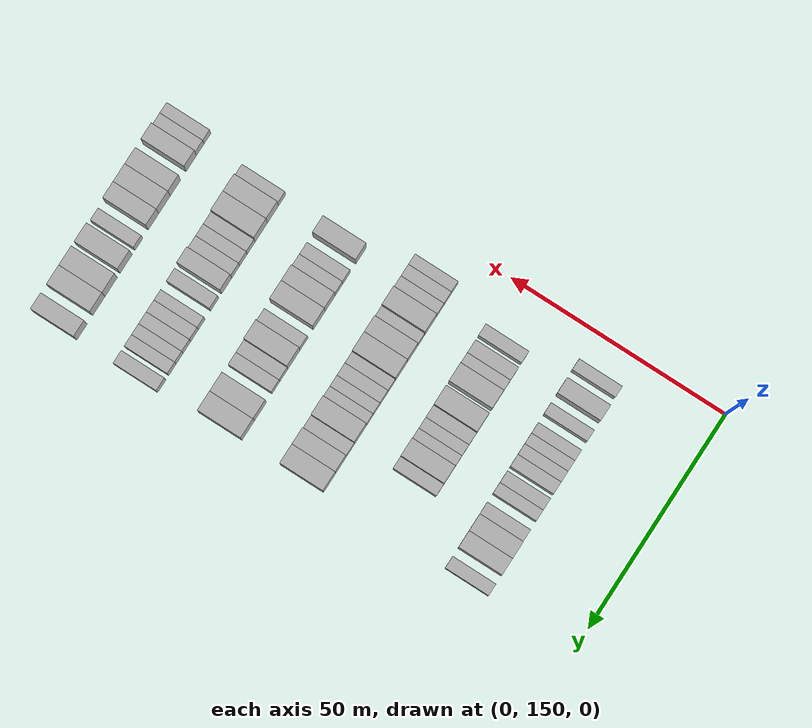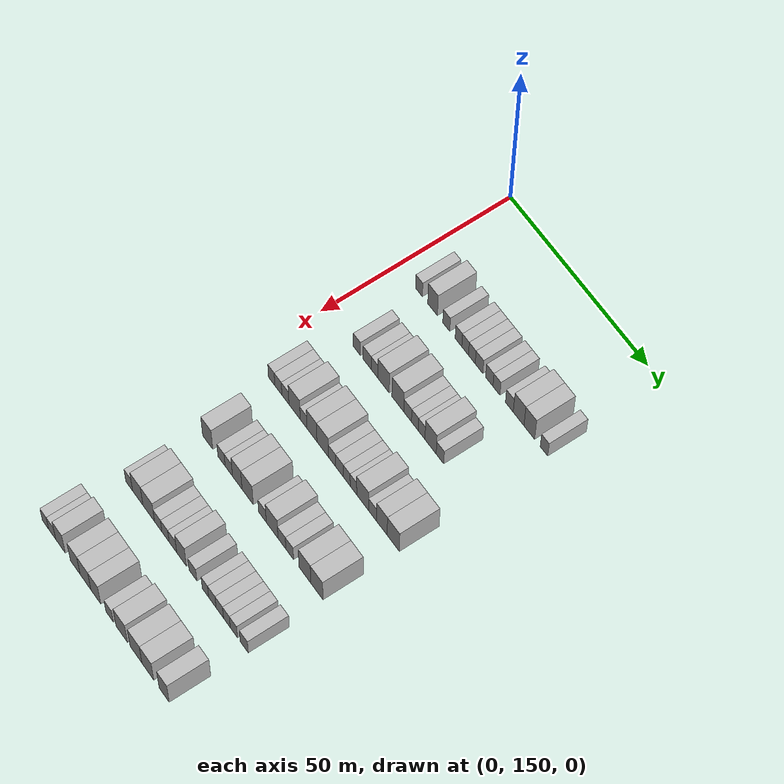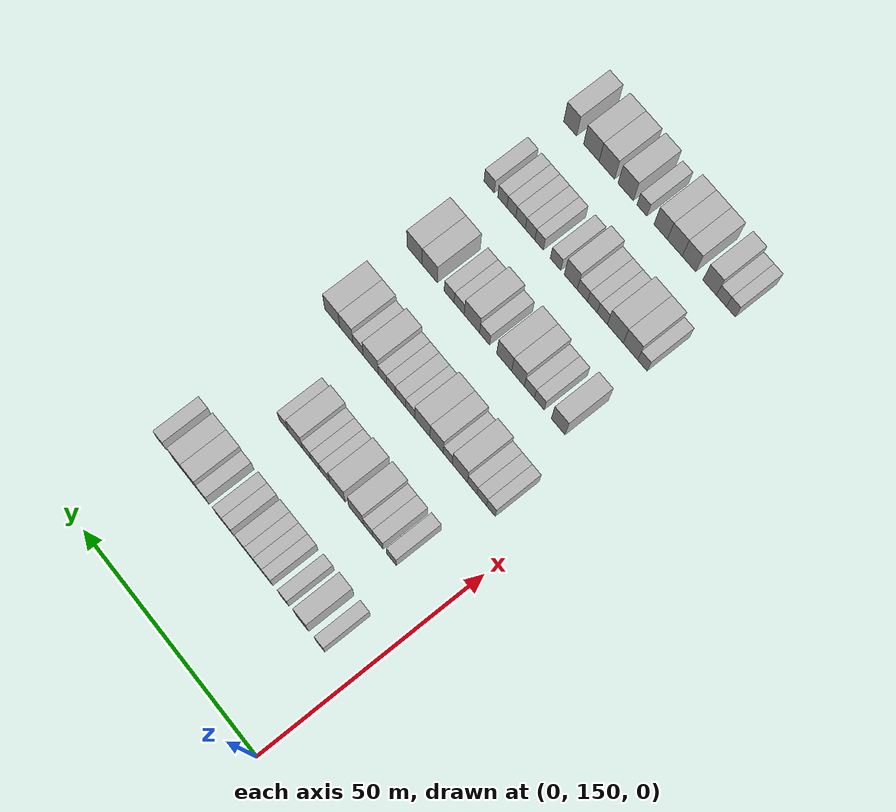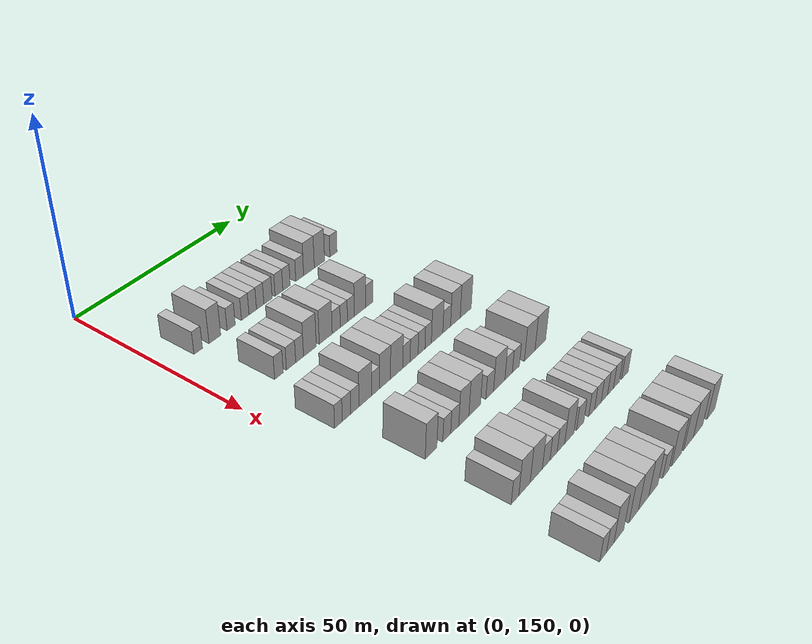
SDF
<sdf version="1.6">
 <world name="default">
  <model name="building_129">
   <static>1</static>
   <pose>25.0000 158.0204 0 0.000000 0.000000 0.000000</pose>
   <link name="link">
    <pose>0 0 3.00 0 0 0</pose>
    <collision name="collision"><geometry><box><size>10.0000 2.5579 6.0000</size></box></geometry></collision>
    <visual name="visual">
     <cast_shadows>0</cast_shadows>
     <geometry><box><size>10.0000 2.5579 6.0000</size></box></geometry>
     <material>
      <script>
       <uri>model://HANNAS_wall/materials/scripts</uri>
       <uri>model://HANNAS_wall/materials/textures</uri>
       <name>vrc/HANNAS_wall</name>
      </script>
     </material>
    </visual>
   </link>
  </model>
  <model name="building_130">
   <static>1</static>
   <pose>25.0000 163.1060 0 0.000000 0.000000 0.000000</pose>
   <link name="link">
    <pose>0 0 4.50 0 0 0</pose>
    <collision name="collision"><geometry><box><size>10.0000 3.6133 9.0000</size></box></geometry></collision>
    <visual name="visual">
     <cast_shadows>0</cast_shadows>
     <geometry><box><size>10.0000 3.6133 9.0000</size></box></geometry>
     <material>
      <script>
       <uri>model://HANNAS_wall/materials/scripts</uri>
       <uri>model://HANNAS_wall/materials/textures</uri>
       <name>vrc/HANNAS_wall</name>
      </script>
     </material>
    </visual>
   </link>
  </model>
  <model name="building_131">
   <static>1</static>
   <pose>25.0000 168.2114 0 0.000000 0.000000 0.000000</pose>
   <link name="link">
    <pose>0 0 3.00 0 0 0</pose>
    <collision name="collision"><geometry><box><size>10.0000 2.5975 6.0000</size></box></geometry></collision>
    <visual name="visual">
     <cast_shadows>0</cast_shadows>
     <geometry><box><size>10.0000 2.5975 6.0000</size></box></geometry>
     <material>
      <script>
       <uri>model://HANNAS_wall/materials/scripts</uri>
       <uri>model://HANNAS_wall/materials/textures</uri>
       <name>vrc/HANNAS_wall</name>
      </script>
     </material>
    </visual>
   </link>
  </model>
  <model name="building_132">
   <static>1</static>
   <pose>25.0000 172.7377 0 0.000000 0.000000 0.000000</pose>
   <link name="link">
    <pose>0 0 3.00 0 0 0</pose>
    <collision name="collision"><geometry><box><size>10.0000 2.4552 6.0000</size></box></geometry></collision>
    <visual name="visual">
     <cast_shadows>0</cast_shadows>
     <geometry><box><size>10.0000 2.4552 6.0000</size></box></geometry>
     <material>
      <script>
       <uri>model://HANNAS_wall/materials/scripts</uri>
       <uri>model://HANNAS_wall/materials/textures</uri>
       <name>vrc/HANNAS_wall</name>
      </script>
     </material>
    </visual>
   </link>
  </model>
  <model name="building_133">
   <static>1</static>
   <pose>25.0000 175.1990 0 0.000000 0.000000 0.000000</pose>
   <link name="link">
    <pose>0 0 3.00 0 0 0</pose>
    <collision name="collision"><geometry><box><size>10.0000 2.4673 6.0000</size></box></geometry></collision>
    <visual name="visual">
     <cast_shadows>0</cast_shadows>
     <geometry><box><size>10.0000 2.4673 6.0000</size></box></geometry>
     <material>
      <script>
       <uri>model://HANNAS_wall/materials/scripts</uri>
       <uri>model://HANNAS_wall/materials/textures</uri>
       <name>vrc/HANNAS_wall</name>
      </script>
     </material>
    </visual>
   </link>
  </model>
  <model name="building_134">
   <static>1</static>
   <pose>25.0000 177.6681 0 0.000000 0.000000 0.000000</pose>
   <link name="link">
    <pose>0 0 3.00 0 0 0</pose>
    <collision name="collision"><geometry><box><size>10.0000 2.4709 6.0000</size></box></geometry></collision>
    <visual name="visual">
     <cast_shadows>0</cast_shadows>
     <geometry><box><size>10.0000 2.4709 6.0000</size></box></geometry>
     <material>
      <script>
       <uri>model://HANNAS_wall/materials/scripts</uri>
       <uri>model://HANNAS_wall/materials/textures</uri>
       <name>vrc/HANNAS_wall</name>
      </script>
     </material>
    </visual>
   </link>
  </model>
  <model name="building_135">
   <static>1</static>
   <pose>25.0000 180.3068 0 0.000000 0.000000 0.000000</pose>
   <link name="link">
    <pose>0 0 3.00 0 0 0</pose>
    <collision name="collision"><geometry><box><size>10.0000 2.8064 6.0000</size></box></geometry></collision>
    <visual name="visual">
     <cast_shadows>0</cast_shadows>
     <geometry><box><size>10.0000 2.8064 6.0000</size></box></geometry>
     <material>
      <script>
       <uri>model://HANNAS_wall/materials/scripts</uri>
       <uri>model://HANNAS_wall/materials/textures</uri>
       <name>vrc/HANNAS_wall</name>
      </script>
     </material>
    </visual>
   </link>
  </model>
  <model name="building_136">
   <static>1</static>
   <pose>25.0000 184.0530 0 0.000000 0.000000 0.000000</pose>
   <link name="link">
    <pose>0 0 3.00 0 0 0</pose>
    <collision name="collision"><geometry><box><size>10.0000 2.6861 6.0000</size></box></geometry></collision>
    <visual name="visual">
     <cast_shadows>0</cast_shadows>
     <geometry><box><size>10.0000 2.6861 6.0000</size></box></geometry>
     <material>
      <script>
       <uri>model://HANNAS_wall/materials/scripts</uri>
       <uri>model://HANNAS_wall/materials/textures</uri>
       <name>vrc/HANNAS_wall</name>
      </script>
     </material>
    </visual>
   </link>
  </model>
  <model name="building_137">
   <static>1</static>
   <pose>25.0000 186.6678 0 0.000000 0.000000 0.000000</pose>
   <link name="link">
    <pose>0 0 3.00 0 0 0</pose>
    <collision name="collision"><geometry><box><size>10.0000 2.5435 6.0000</size></box></geometry></collision>
    <visual name="visual">
     <cast_shadows>0</cast_shadows>
     <geometry><box><size>10.0000 2.5435 6.0000</size></box></geometry>
     <material>
      <script>
       <uri>model://HANNAS_wall/materials/scripts</uri>
       <uri>model://HANNAS_wall/materials/textures</uri>
       <name>vrc/HANNAS_wall</name>
      </script>
     </material>
    </visual>
   </link>
  </model>
  <model name="building_138">
   <static>1</static>
   <pose>25.0000 191.3508 0 0.000000 0.000000 0.000000</pose>
   <link name="link">
    <pose>0 0 3.00 0 0 0</pose>
    <collision name="collision"><geometry><box><size>10.0000 2.8224 6.0000</size></box></geometry></collision>
    <visual name="visual">
     <cast_shadows>0</cast_shadows>
     <geometry><box><size>10.0000 2.8224 6.0000</size></box></geometry>
     <material>
      <script>
       <uri>model://HANNAS_wall/materials/scripts</uri>
       <uri>model://HANNAS_wall/materials/textures</uri>
       <name>vrc/HANNAS_wall</name>
      </script>
     </material>
    </visual>
   </link>
  </model>
  <model name="building_139">
   <static>1</static>
   <pose>25.0000 194.6985 0 0.000000 0.000000 0.000000</pose>
   <link name="link">
    <pose>0 0 4.50 0 0 0</pose>
    <collision name="collision"><geometry><box><size>10.0000 3.8731 9.0000</size></box></geometry></collision>
    <visual name="visual">
     <cast_shadows>0</cast_shadows>
     <geometry><box><size>10.0000 3.8731 9.0000</size></box></geometry>
     <material>
      <script>
       <uri>model://HANNAS_wall/materials/scripts</uri>
       <uri>model://HANNAS_wall/materials/textures</uri>
       <name>vrc/HANNAS_wall</name>
      </script>
     </material>
    </visual>
   </link>
  </model>
  <model name="building_140">
   <static>1</static>
   <pose>25.0000 198.5472 0 0.000000 0.000000 0.000000</pose>
   <link name="link">
    <pose>0 0 4.50 0 0 0</pose>
    <collision name="collision"><geometry><box><size>10.0000 3.8243 9.0000</size></box></geometry></collision>
    <visual name="visual">
     <cast_shadows>0</cast_shadows>
     <geometry><box><size>10.0000 3.8243 9.0000</size></box></geometry>
     <material>
      <script>
       <uri>model://HANNAS_wall/materials/scripts</uri>
       <uri>model://HANNAS_wall/materials/textures</uri>
       <name>vrc/HANNAS_wall</name>
      </script>
     </material>
    </visual>
   </link>
  </model>
  <model name="building_141">
   <static>1</static>
   <pose>25.0000 203.8092 0 0.000000 0.000000 0.000000</pose>
   <link name="link">
    <pose>0 0 3.00 0 0 0</pose>
    <collision name="collision"><geometry><box><size>10.0000 2.6997 6.0000</size></box></geometry></collision>
    <visual name="visual">
     <cast_shadows>0</cast_shadows>
     <geometry><box><size>10.0000 2.6997 6.0000</size></box></geometry>
     <material>
      <script>
       <uri>model://HANNAS_wall/materials/scripts</uri>
       <uri>model://HANNAS_wall/materials/textures</uri>
       <name>vrc/HANNAS_wall</name>
      </script>
     </material>
    </visual>
   </link>
  </model>
  <model name="building_286">
   <static>1</static>
   <pose>44.0000 162.1667 0 0.000000 0.000000 0.000000</pose>
   <link name="link">
    <pose>0 0 3.00 0 0 0</pose>
    <collision name="collision"><geometry><box><size>10.0000 2.6985 6.0000</size></box></geometry></collision>
    <visual name="visual">
     <cast_shadows>0</cast_shadows>
     <geometry><box><size>10.0000 2.6985 6.0000</size></box></geometry>
     <material>
      <script>
       <uri>model://HANNAS_wall/materials/scripts</uri>
       <uri>model://HANNAS_wall/materials/textures</uri>
       <name>vrc/HANNAS_wall</name>
      </script>
     </material>
    </visual>
   </link>
  </model>
  <model name="building_287">
   <static>1</static>
   <pose>44.0000 166.0072 0 0.000000 0.000000 0.000000</pose>
   <link name="link">
    <pose>0 0 3.00 0 0 0</pose>
    <collision name="collision"><geometry><box><size>10.0000 2.9824 6.0000</size></box></geometry></collision>
    <visual name="visual">
     <cast_shadows>0</cast_shadows>
     <geometry><box><size>10.0000 2.9824 6.0000</size></box></geometry>
     <material>
      <script>
       <uri>model://HANNAS_wall/materials/scripts</uri>
       <uri>model://HANNAS_wall/materials/textures</uri>
       <name>vrc/HANNAS_wall</name>
      </script>
     </material>
    </visual>
   </link>
  </model>
  <model name="building_288">
   <static>1</static>
   <pose>44.0000 168.7724 0 0.000000 0.000000 0.000000</pose>
   <link name="link">
    <pose>0 0 3.00 0 0 0</pose>
    <collision name="collision"><geometry><box><size>10.0000 2.5480 6.0000</size></box></geometry></collision>
    <visual name="visual">
     <cast_shadows>0</cast_shadows>
     <geometry><box><size>10.0000 2.5480 6.0000</size></box></geometry>
     <material>
      <script>
       <uri>model://HANNAS_wall/materials/scripts</uri>
       <uri>model://HANNAS_wall/materials/textures</uri>
       <name>vrc/HANNAS_wall</name>
      </script>
     </material>
    </visual>
   </link>
  </model>
  <model name="building_289">
   <static>1</static>
   <pose>44.0000 172.1587 0 0.000000 0.000000 0.000000</pose>
   <link name="link">
    <pose>0 0 4.50 0 0 0</pose>
    <collision name="collision"><geometry><box><size>10.0000 4.2247 9.0000</size></box></geometry></collision>
    <visual name="visual">
     <cast_shadows>0</cast_shadows>
     <geometry><box><size>10.0000 4.2247 9.0000</size></box></geometry>
     <material>
      <script>
       <uri>model://HANNAS_wall/materials/scripts</uri>
       <uri>model://HANNAS_wall/materials/textures</uri>
       <name>vrc/HANNAS_wall</name>
      </script>
     </material>
    </visual>
   </link>
  </model>
  <model name="building_290">
   <static>1</static>
   <pose>44.0000 177.4740 0 0.000000 0.000000 0.000000</pose>
   <link name="link">
    <pose>0 0 4.50 0 0 0</pose>
    <collision name="collision"><geometry><box><size>10.0000 4.4060 9.0000</size></box></geometry></collision>
    <visual name="visual">
     <cast_shadows>0</cast_shadows>
     <geometry><box><size>10.0000 4.4060 9.0000</size></box></geometry>
     <material>
      <script>
       <uri>model://HANNAS_wall/materials/scripts</uri>
       <uri>model://HANNAS_wall/materials/textures</uri>
       <name>vrc/HANNAS_wall</name>
      </script>
     </material>
    </visual>
   </link>
  </model>
  <model name="building_291">
   <static>1</static>
   <pose>44.0000 181.0911 0 0.000000 0.000000 0.000000</pose>
   <link name="link">
    <pose>0 0 3.00 0 0 0</pose>
    <collision name="collision"><geometry><box><size>10.0000 2.8283 6.0000</size></box></geometry></collision>
    <visual name="visual">
     <cast_shadows>0</cast_shadows>
     <geometry><box><size>10.0000 2.8283 6.0000</size></box></geometry>
     <material>
      <script>
       <uri>model://HANNAS_wall/materials/scripts</uri>
       <uri>model://HANNAS_wall/materials/textures</uri>
       <name>vrc/HANNAS_wall</name>
      </script>
     </material>
    </visual>
   </link>
  </model>
  <model name="building_292">
   <static>1</static>
   <pose>44.0000 183.7654 0 0.000000 0.000000 0.000000</pose>
   <link name="link">
    <pose>0 0 3.00 0 0 0</pose>
    <collision name="collision"><geometry><box><size>10.0000 2.5203 6.0000</size></box></geometry></collision>
    <visual name="visual">
     <cast_shadows>0</cast_shadows>
     <geometry><box><size>10.0000 2.5203 6.0000</size></box></geometry>
     <material>
      <script>
       <uri>model://HANNAS_wall/materials/scripts</uri>
       <uri>model://HANNAS_wall/materials/textures</uri>
       <name>vrc/HANNAS_wall</name>
      </script>
     </material>
    </visual>
   </link>
  </model>
  <model name="building_293">
   <static>1</static>
   <pose>44.0000 186.2464 0 0.000000 0.000000 0.000000</pose>
   <link name="link">
    <pose>0 0 3.00 0 0 0</pose>
    <collision name="collision"><geometry><box><size>10.0000 2.4418 6.0000</size></box></geometry></collision>
    <visual name="visual">
     <cast_shadows>0</cast_shadows>
     <geometry><box><size>10.0000 2.4418 6.0000</size></box></geometry>
     <material>
      <script>
       <uri>model://HANNAS_wall/materials/scripts</uri>
       <uri>model://HANNAS_wall/materials/textures</uri>
       <name>vrc/HANNAS_wall</name>
      </script>
     </material>
    </visual>
   </link>
  </model>
  <model name="building_294">
   <static>1</static>
   <pose>44.0000 189.5259 0 0.000000 0.000000 0.000000</pose>
   <link name="link">
    <pose>0 0 4.50 0 0 0</pose>
    <collision name="collision"><geometry><box><size>10.0000 4.1172 9.0000</size></box></geometry></collision>
    <visual name="visual">
     <cast_shadows>0</cast_shadows>
     <geometry><box><size>10.0000 4.1172 9.0000</size></box></geometry>
     <material>
      <script>
       <uri>model://HANNAS_wall/materials/scripts</uri>
       <uri>model://HANNAS_wall/materials/textures</uri>
       <name>vrc/HANNAS_wall</name>
      </script>
     </material>
    </visual>
   </link>
  </model>
  <model name="building_295">
   <static>1</static>
   <pose>44.0000 192.9591 0 0.000000 0.000000 0.000000</pose>
   <link name="link">
    <pose>0 0 3.00 0 0 0</pose>
    <collision name="collision"><geometry><box><size>10.0000 2.7492 6.0000</size></box></geometry></collision>
    <visual name="visual">
     <cast_shadows>0</cast_shadows>
     <geometry><box><size>10.0000 2.7492 6.0000</size></box></geometry>
     <material>
      <script>
       <uri>model://HANNAS_wall/materials/scripts</uri>
       <uri>model://HANNAS_wall/materials/textures</uri>
       <name>vrc/HANNAS_wall</name>
      </script>
     </material>
    </visual>
   </link>
  </model>
  <model name="building_460">
   <static>1</static>
   <pose>63.0000 157.9644 0 0.000000 0.000000 0.000000</pose>
   <link name="link">
    <pose>0 0 3.00 0 0 0</pose>
    <collision name="collision"><geometry><box><size>10.0000 2.4148 6.0000</size></box></geometry></collision>
    <visual name="visual">
     <cast_shadows>0</cast_shadows>
     <geometry><box><size>10.0000 2.4148 6.0000</size></box></geometry>
     <material>
      <script>
       <uri>model://HANNAS_wall/materials/scripts</uri>
       <uri>model://HANNAS_wall/materials/textures</uri>
       <name>vrc/HANNAS_wall</name>
      </script>
     </material>
    </visual>
   </link>
  </model>
  <model name="building_461">
   <static>1</static>
   <pose>63.0000 160.5144 0 0.000000 0.000000 0.000000</pose>
   <link name="link">
    <pose>0 0 3.00 0 0 0</pose>
    <collision name="collision"><geometry><box><size>10.0000 2.6851 6.0000</size></box></geometry></collision>
    <visual name="visual">
     <cast_shadows>0</cast_shadows>
     <geometry><box><size>10.0000 2.6851 6.0000</size></box></geometry>
     <material>
      <script>
       <uri>model://HANNAS_wall/materials/scripts</uri>
       <uri>model://HANNAS_wall/materials/textures</uri>
       <name>vrc/HANNAS_wall</name>
      </script>
     </material>
    </visual>
   </link>
  </model>
  <model name="building_462">
   <static>1</static>
   <pose>63.0000 163.1982 0 0.000000 0.000000 0.000000</pose>
   <link name="link">
    <pose>0 0 3.00 0 0 0</pose>
    <collision name="collision"><geometry><box><size>10.0000 2.6826 6.0000</size></box></geometry></collision>
    <visual name="visual">
     <cast_shadows>0</cast_shadows>
     <geometry><box><size>10.0000 2.6826 6.0000</size></box></geometry>
     <material>
      <script>
       <uri>model://HANNAS_wall/materials/scripts</uri>
       <uri>model://HANNAS_wall/materials/textures</uri>
       <name>vrc/HANNAS_wall</name>
      </script>
     </material>
    </visual>
   </link>
  </model>
  <model name="building_463">
   <static>1</static>
   <pose>63.0000 166.6734 0 0.000000 0.000000 0.000000</pose>
   <link name="link">
    <pose>0 0 4.50 0 0 0</pose>
    <collision name="collision"><geometry><box><size>10.0000 4.2678 9.0000</size></box></geometry></collision>
    <visual name="visual">
     <cast_shadows>0</cast_shadows>
     <geometry><box><size>10.0000 4.2678 9.0000</size></box></geometry>
     <material>
      <script>
       <uri>model://HANNAS_wall/materials/scripts</uri>
       <uri>model://HANNAS_wall/materials/textures</uri>
       <name>vrc/HANNAS_wall</name>
      </script>
     </material>
    </visual>
   </link>
  </model>
  <model name="building_464">
   <static>1</static>
   <pose>63.0000 170.0797 0 0.000000 0.000000 0.000000</pose>
   <link name="link">
    <pose>0 0 3.00 0 0 0</pose>
    <collision name="collision"><geometry><box><size>10.0000 2.5447 6.0000</size></box></geometry></collision>
    <visual name="visual">
     <cast_shadows>0</cast_shadows>
     <geometry><box><size>10.0000 2.5447 6.0000</size></box></geometry>
     <material>
      <script>
       <uri>model://HANNAS_wall/materials/scripts</uri>
       <uri>model://HANNAS_wall/materials/textures</uri>
       <name>vrc/HANNAS_wall</name>
      </script>
     </material>
    </visual>
   </link>
  </model>
  <model name="building_465">
   <static>1</static>
   <pose>63.0000 173.2313 0 0.000000 0.000000 0.000000</pose>
   <link name="link">
    <pose>0 0 4.50 0 0 0</pose>
    <collision name="collision"><geometry><box><size>10.0000 3.7586 9.0000</size></box></geometry></collision>
    <visual name="visual">
     <cast_shadows>0</cast_shadows>
     <geometry><box><size>10.0000 3.7586 9.0000</size></box></geometry>
     <material>
      <script>
       <uri>model://HANNAS_wall/materials/scripts</uri>
       <uri>model://HANNAS_wall/materials/textures</uri>
       <name>vrc/HANNAS_wall</name>
      </script>
     </material>
    </visual>
   </link>
  </model>
  <model name="building_466">
   <static>1</static>
   <pose>63.0000 177.2924 0 0.000000 0.000000 0.000000</pose>
   <link name="link">
    <pose>0 0 4.50 0 0 0</pose>
    <collision name="collision"><geometry><box><size>10.0000 4.3635 9.0000</size></box></geometry></collision>
    <visual name="visual">
     <cast_shadows>0</cast_shadows>
     <geometry><box><size>10.0000 4.3635 9.0000</size></box></geometry>
     <material>
      <script>
       <uri>model://HANNAS_wall/materials/scripts</uri>
       <uri>model://HANNAS_wall/materials/textures</uri>
       <name>vrc/HANNAS_wall</name>
      </script>
     </material>
    </visual>
   </link>
  </model>
  <model name="building_467">
   <static>1</static>
   <pose>63.0000 180.7742 0 0.000000 0.000000 0.000000</pose>
   <link name="link">
    <pose>0 0 3.00 0 0 0</pose>
    <collision name="collision"><geometry><box><size>10.0000 2.6001 6.0000</size></box></geometry></collision>
    <visual name="visual">
     <cast_shadows>0</cast_shadows>
     <geometry><box><size>10.0000 2.6001 6.0000</size></box></geometry>
     <material>
      <script>
       <uri>model://HANNAS_wall/materials/scripts</uri>
       <uri>model://HANNAS_wall/materials/textures</uri>
       <name>vrc/HANNAS_wall</name>
      </script>
     </material>
    </visual>
   </link>
  </model>
  <model name="building_468">
   <static>1</static>
   <pose>63.0000 183.5254 0 0.000000 0.000000 0.000000</pose>
   <link name="link">
    <pose>0 0 3.00 0 0 0</pose>
    <collision name="collision"><geometry><box><size>10.0000 2.9022 6.0000</size></box></geometry></collision>
    <visual name="visual">
     <cast_shadows>0</cast_shadows>
     <geometry><box><size>10.0000 2.9022 6.0000</size></box></geometry>
     <material>
      <script>
       <uri>model://HANNAS_wall/materials/scripts</uri>
       <uri>model://HANNAS_wall/materials/textures</uri>
       <name>vrc/HANNAS_wall</name>
      </script>
     </material>
    </visual>
   </link>
  </model>
  <model name="building_469">
   <static>1</static>
   <pose>63.0000 186.2348 0 0.000000 0.000000 0.000000</pose>
   <link name="link">
    <pose>0 0 3.00 0 0 0</pose>
    <collision name="collision"><geometry><box><size>10.0000 2.5167 6.0000</size></box></geometry></collision>
    <visual name="visual">
     <cast_shadows>0</cast_shadows>
     <geometry><box><size>10.0000 2.5167 6.0000</size></box></geometry>
     <material>
      <script>
       <uri>model://HANNAS_wall/materials/scripts</uri>
       <uri>model://HANNAS_wall/materials/textures</uri>
       <name>vrc/HANNAS_wall</name>
      </script>
     </material>
    </visual>
   </link>
  </model>
  <model name="building_470">
   <static>1</static>
   <pose>63.0000 188.6962 0 0.000000 0.000000 0.000000</pose>
   <link name="link">
    <pose>0 0 3.00 0 0 0</pose>
    <collision name="collision"><geometry><box><size>10.0000 2.4060 6.0000</size></box></geometry></collision>
    <visual name="visual">
     <cast_shadows>0</cast_shadows>
     <geometry><box><size>10.0000 2.4060 6.0000</size></box></geometry>
     <material>
      <script>
       <uri>model://HANNAS_wall/materials/scripts</uri>
       <uri>model://HANNAS_wall/materials/textures</uri>
       <name>vrc/HANNAS_wall</name>
      </script>
     </material>
    </visual>
   </link>
  </model>
  <model name="building_471">
   <static>1</static>
   <pose>63.0000 192.0791 0 0.000000 0.000000 0.000000</pose>
   <link name="link">
    <pose>0 0 4.50 0 0 0</pose>
    <collision name="collision"><geometry><box><size>10.0000 4.3598 9.0000</size></box></geometry></collision>
    <visual name="visual">
     <cast_shadows>0</cast_shadows>
     <geometry><box><size>10.0000 4.3598 9.0000</size></box></geometry>
     <material>
      <script>
       <uri>model://HANNAS_wall/materials/scripts</uri>
       <uri>model://HANNAS_wall/materials/textures</uri>
       <name>vrc/HANNAS_wall</name>
      </script>
     </material>
    </visual>
   </link>
  </model>
  <model name="building_472">
   <static>1</static>
   <pose>63.0000 195.7497 0 0.000000 0.000000 0.000000</pose>
   <link name="link">
    <pose>0 0 3.00 0 0 0</pose>
    <collision name="collision"><geometry><box><size>10.0000 2.9816 6.0000</size></box></geometry></collision>
    <visual name="visual">
     <cast_shadows>0</cast_shadows>
     <geometry><box><size>10.0000 2.9816 6.0000</size></box></geometry>
     <material>
      <script>
       <uri>model://HANNAS_wall/materials/scripts</uri>
       <uri>model://HANNAS_wall/materials/textures</uri>
       <name>vrc/HANNAS_wall</name>
      </script>
     </material>
    </visual>
   </link>
  </model>
  <model name="building_473">
   <static>1</static>
   <pose>63.0000 199.1507 0 0.000000 0.000000 0.000000</pose>
   <link name="link">
    <pose>0 0 4.50 0 0 0</pose>
    <collision name="collision"><geometry><box><size>10.0000 3.8204 9.0000</size></box></geometry></collision>
    <visual name="visual">
     <cast_shadows>0</cast_shadows>
     <geometry><box><size>10.0000 3.8204 9.0000</size></box></geometry>
     <material>
      <script>
       <uri>model://HANNAS_wall/materials/scripts</uri>
       <uri>model://HANNAS_wall/materials/textures</uri>
       <name>vrc/HANNAS_wall</name>
      </script>
     </material>
    </visual>
   </link>
  </model>
  <model name="building_474">
   <static>1</static>
   <pose>63.0000 203.2750 0 0.000000 0.000000 0.000000</pose>
   <link name="link">
    <pose>0 0 4.50 0 0 0</pose>
    <collision name="collision"><geometry><box><size>10.0000 4.4281 9.0000</size></box></geometry></collision>
    <visual name="visual">
     <cast_shadows>0</cast_shadows>
     <geometry><box><size>10.0000 4.4281 9.0000</size></box></geometry>
     <material>
      <script>
       <uri>model://HANNAS_wall/materials/scripts</uri>
       <uri>model://HANNAS_wall/materials/textures</uri>
       <name>vrc/HANNAS_wall</name>
      </script>
     </material>
    </visual>
   </link>
  </model>
  <model name="building_640">
   <static>1</static>
   <pose>82.0000 162.3221 0 0.000000 0.000000 0.000000</pose>
   <link name="link">
    <pose>0 0 4.50 0 0 0</pose>
    <collision name="collision"><geometry><box><size>10.0000 3.8649 9.0000</size></box></geometry></collision>
    <visual name="visual">
     <cast_shadows>0</cast_shadows>
     <geometry><box><size>10.0000 3.8649 9.0000</size></box></geometry>
     <material>
      <script>
       <uri>model://HANNAS_wall/materials/scripts</uri>
       <uri>model://HANNAS_wall/materials/textures</uri>
       <name>vrc/HANNAS_wall</name>
      </script>
     </material>
    </visual>
   </link>
  </model>
  <model name="building_641">
   <static>1</static>
   <pose>82.0000 167.6178 0 0.000000 0.000000 0.000000</pose>
   <link name="link">
    <pose>0 0 3.00 0 0 0</pose>
    <collision name="collision"><geometry><box><size>10.0000 2.7267 6.0000</size></box></geometry></collision>
    <visual name="visual">
     <cast_shadows>0</cast_shadows>
     <geometry><box><size>10.0000 2.7267 6.0000</size></box></geometry>
     <material>
      <script>
       <uri>model://HANNAS_wall/materials/scripts</uri>
       <uri>model://HANNAS_wall/materials/textures</uri>
       <name>vrc/HANNAS_wall</name>
      </script>
     </material>
    </visual>
   </link>
  </model>
  <model name="building_642">
   <static>1</static>
   <pose>82.0000 170.3873 0 0.000000 0.000000 0.000000</pose>
   <link name="link">
    <pose>0 0 3.00 0 0 0</pose>
    <collision name="collision"><geometry><box><size>10.0000 2.8124 6.0000</size></box></geometry></collision>
    <visual name="visual">
     <cast_shadows>0</cast_shadows>
     <geometry><box><size>10.0000 2.8124 6.0000</size></box></geometry>
     <material>
      <script>
       <uri>model://HANNAS_wall/materials/scripts</uri>
       <uri>model://HANNAS_wall/materials/textures</uri>
       <name>vrc/HANNAS_wall</name>
      </script>
     </material>
    </visual>
   </link>
  </model>
  <model name="building_643">
   <static>1</static>
   <pose>82.0000 173.6055 0 0.000000 0.000000 0.000000</pose>
   <link name="link">
    <pose>0 0 4.50 0 0 0</pose>
    <collision name="collision"><geometry><box><size>10.0000 3.6238 9.0000</size></box></geometry></collision>
    <visual name="visual">
     <cast_shadows>0</cast_shadows>
     <geometry><box><size>10.0000 3.6238 9.0000</size></box></geometry>
     <material>
      <script>
       <uri>model://HANNAS_wall/materials/scripts</uri>
       <uri>model://HANNAS_wall/materials/textures</uri>
       <name>vrc/HANNAS_wall</name>
      </script>
     </material>
    </visual>
   </link>
  </model>
  <model name="building_644">
   <static>1</static>
   <pose>82.0000 177.5325 0 0.000000 0.000000 0.000000</pose>
   <link name="link">
    <pose>0 0 4.50 0 0 0</pose>
    <collision name="collision"><geometry><box><size>10.0000 4.2303 9.0000</size></box></geometry></collision>
    <visual name="visual">
     <cast_shadows>0</cast_shadows>
     <geometry><box><size>10.0000 4.2303 9.0000</size></box></geometry>
     <material>
      <script>
       <uri>model://HANNAS_wall/materials/scripts</uri>
       <uri>model://HANNAS_wall/materials/textures</uri>
       <name>vrc/HANNAS_wall</name>
      </script>
     </material>
    </visual>
   </link>
  </model>
  <model name="building_645">
   <static>1</static>
   <pose>82.0000 183.0895 0 0.000000 0.000000 0.000000</pose>
   <link name="link">
    <pose>0 0 3.00 0 0 0</pose>
    <collision name="collision"><geometry><box><size>10.0000 2.8835 6.0000</size></box></geometry></collision>
    <visual name="visual">
     <cast_shadows>0</cast_shadows>
     <geometry><box><size>10.0000 2.8835 6.0000</size></box></geometry>
     <material>
      <script>
       <uri>model://HANNAS_wall/materials/scripts</uri>
       <uri>model://HANNAS_wall/materials/textures</uri>
       <name>vrc/HANNAS_wall</name>
      </script>
     </material>
    </visual>
   </link>
  </model>
  <model name="building_646">
   <static>1</static>
   <pose>82.0000 186.7228 0 0.000000 0.000000 0.000000</pose>
   <link name="link">
    <pose>0 0 4.50 0 0 0</pose>
    <collision name="collision"><geometry><box><size>10.0000 4.3831 9.0000</size></box></geometry></collision>
    <visual name="visual">
     <cast_shadows>0</cast_shadows>
     <geometry><box><size>10.0000 4.3831 9.0000</size></box></geometry>
     <material>
      <script>
       <uri>model://HANNAS_wall/materials/scripts</uri>
       <uri>model://HANNAS_wall/materials/textures</uri>
       <name>vrc/HANNAS_wall</name>
      </script>
     </material>
    </visual>
   </link>
  </model>
  <model name="building_647">
   <static>1</static>
   <pose>82.0000 190.3711 0 0.000000 0.000000 0.000000</pose>
   <link name="link">
    <pose>0 0 3.00 0 0 0</pose>
    <collision name="collision"><geometry><box><size>10.0000 2.9135 6.0000</size></box></geometry></collision>
    <visual name="visual">
     <cast_shadows>0</cast_shadows>
     <geometry><box><size>10.0000 2.9135 6.0000</size></box></geometry>
     <material>
      <script>
       <uri>model://HANNAS_wall/materials/scripts</uri>
       <uri>model://HANNAS_wall/materials/textures</uri>
       <name>vrc/HANNAS_wall</name>
      </script>
     </material>
    </visual>
   </link>
  </model>
  <model name="building_648">
   <static>1</static>
   <pose>82.0000 193.2504 0 0.000000 0.000000 0.000000</pose>
   <link name="link">
    <pose>0 0 3.00 0 0 0</pose>
    <collision name="collision"><geometry><box><size>10.0000 2.8450 6.0000</size></box></geometry></collision>
    <visual name="visual">
     <cast_shadows>0</cast_shadows>
     <geometry><box><size>10.0000 2.8450 6.0000</size></box></geometry>
     <material>
      <script>
       <uri>model://HANNAS_wall/materials/scripts</uri>
       <uri>model://HANNAS_wall/materials/textures</uri>
       <name>vrc/HANNAS_wall</name>
      </script>
     </material>
    </visual>
   </link>
  </model>
  <model name="building_649">
   <static>1</static>
   <pose>82.0000 198.8581 0 0.000000 0.000000 0.000000</pose>
   <link name="link">
    <pose>0 0 4.50 0 0 0</pose>
    <collision name="collision"><geometry><box><size>10.0000 4.3703 9.0000</size></box></geometry></collision>
    <visual name="visual">
     <cast_shadows>0</cast_shadows>
     <geometry><box><size>10.0000 4.3703 9.0000</size></box></geometry>
     <material>
      <script>
       <uri>model://HANNAS_wall/materials/scripts</uri>
       <uri>model://HANNAS_wall/materials/textures</uri>
       <name>vrc/HANNAS_wall</name>
      </script>
     </material>
    </visual>
   </link>
  </model>
  <model name="building_650">
   <static>1</static>
   <pose>82.0000 203.2731 0 0.000000 0.000000 0.000000</pose>
   <link name="link">
    <pose>0 0 4.50 0 0 0</pose>
    <collision name="collision"><geometry><box><size>10.0000 4.4597 9.0000</size></box></geometry></collision>
    <visual name="visual">
     <cast_shadows>0</cast_shadows>
     <geometry><box><size>10.0000 4.4597 9.0000</size></box></geometry>
     <material>
      <script>
       <uri>model://HANNAS_wall/materials/scripts</uri>
       <uri>model://HANNAS_wall/materials/textures</uri>
       <name>vrc/HANNAS_wall</name>
      </script>
     </material>
    </visual>
   </link>
  </model>
  <model name="building_807">
   <static>1</static>
   <pose>101.0000 161.5472 0 0.000000 0.000000 0.000000</pose>
   <link name="link">
    <pose>0 0 3.00 0 0 0</pose>
    <collision name="collision"><geometry><box><size>10.0000 2.6489 6.0000</size></box></geometry></collision>
    <visual name="visual">
     <cast_shadows>0</cast_shadows>
     <geometry><box><size>10.0000 2.6489 6.0000</size></box></geometry>
     <material>
      <script>
       <uri>model://HANNAS_wall/materials/scripts</uri>
       <uri>model://HANNAS_wall/materials/textures</uri>
       <name>vrc/HANNAS_wall</name>
      </script>
     </material>
    </visual>
   </link>
  </model>
  <model name="building_808">
   <static>1</static>
   <pose>101.0000 164.8739 0 0.000000 0.000000 0.000000</pose>
   <link name="link">
    <pose>0 0 4.50 0 0 0</pose>
    <collision name="collision"><geometry><box><size>10.0000 4.0045 9.0000</size></box></geometry></collision>
    <visual name="visual">
     <cast_shadows>0</cast_shadows>
     <geometry><box><size>10.0000 4.0045 9.0000</size></box></geometry>
     <material>
      <script>
       <uri>model://HANNAS_wall/materials/scripts</uri>
       <uri>model://HANNAS_wall/materials/textures</uri>
       <name>vrc/HANNAS_wall</name>
      </script>
     </material>
    </visual>
   </link>
  </model>
  <model name="building_809">
   <static>1</static>
   <pose>101.0000 169.1126 0 0.000000 0.000000 0.000000</pose>
   <link name="link">
    <pose>0 0 4.50 0 0 0</pose>
    <collision name="collision"><geometry><box><size>10.0000 4.4730 9.0000</size></box></geometry></collision>
    <visual name="visual">
     <cast_shadows>0</cast_shadows>
     <geometry><box><size>10.0000 4.4730 9.0000</size></box></geometry>
     <material>
      <script>
       <uri>model://HANNAS_wall/materials/scripts</uri>
       <uri>model://HANNAS_wall/materials/textures</uri>
       <name>vrc/HANNAS_wall</name>
      </script>
     </material>
    </visual>
   </link>
  </model>
  <model name="building_810">
   <static>1</static>
   <pose>101.0000 172.7602 0 0.000000 0.000000 0.000000</pose>
   <link name="link">
    <pose>0 0 3.00 0 0 0</pose>
    <collision name="collision"><geometry><box><size>10.0000 2.8223 6.0000</size></box></geometry></collision>
    <visual name="visual">
     <cast_shadows>0</cast_shadows>
     <geometry><box><size>10.0000 2.8223 6.0000</size></box></geometry>
     <material>
      <script>
       <uri>model://HANNAS_wall/materials/scripts</uri>
       <uri>model://HANNAS_wall/materials/textures</uri>
       <name>vrc/HANNAS_wall</name>
      </script>
     </material>
    </visual>
   </link>
  </model>
  <model name="building_811">
   <static>1</static>
   <pose>101.0000 175.5449 0 0.000000 0.000000 0.000000</pose>
   <link name="link">
    <pose>0 0 3.00 0 0 0</pose>
    <collision name="collision"><geometry><box><size>10.0000 2.7470 6.0000</size></box></geometry></collision>
    <visual name="visual">
     <cast_shadows>0</cast_shadows>
     <geometry><box><size>10.0000 2.7470 6.0000</size></box></geometry>
     <material>
      <script>
       <uri>model://HANNAS_wall/materials/scripts</uri>
       <uri>model://HANNAS_wall/materials/textures</uri>
       <name>vrc/HANNAS_wall</name>
      </script>
     </material>
    </visual>
   </link>
  </model>
  <model name="building_812">
   <static>1</static>
   <pose>101.0000 178.3660 0 0.000000 0.000000 0.000000</pose>
   <link name="link">
    <pose>0 0 3.00 0 0 0</pose>
    <collision name="collision"><geometry><box><size>10.0000 2.8953 6.0000</size></box></geometry></collision>
    <visual name="visual">
     <cast_shadows>0</cast_shadows>
     <geometry><box><size>10.0000 2.8953 6.0000</size></box></geometry>
     <material>
      <script>
       <uri>model://HANNAS_wall/materials/scripts</uri>
       <uri>model://HANNAS_wall/materials/textures</uri>
       <name>vrc/HANNAS_wall</name>
      </script>
     </material>
    </visual>
   </link>
  </model>
  <model name="building_813">
   <static>1</static>
   <pose>101.0000 181.6441 0 0.000000 0.000000 0.000000</pose>
   <link name="link">
    <pose>0 0 4.50 0 0 0</pose>
    <collision name="collision"><geometry><box><size>10.0000 3.6609 9.0000</size></box></geometry></collision>
    <visual name="visual">
     <cast_shadows>0</cast_shadows>
     <geometry><box><size>10.0000 3.6609 9.0000</size></box></geometry>
     <material>
      <script>
       <uri>model://HANNAS_wall/materials/scripts</uri>
       <uri>model://HANNAS_wall/materials/textures</uri>
       <name>vrc/HANNAS_wall</name>
      </script>
     </material>
    </visual>
   </link>
  </model>
  <model name="building_814">
   <static>1</static>
   <pose>101.0000 185.9662 0 0.000000 0.000000 0.000000</pose>
   <link name="link">
    <pose>0 0 3.00 0 0 0</pose>
    <collision name="collision"><geometry><box><size>10.0000 2.9832 6.0000</size></box></geometry></collision>
    <visual name="visual">
     <cast_shadows>0</cast_shadows>
     <geometry><box><size>10.0000 2.9832 6.0000</size></box></geometry>
     <material>
      <script>
       <uri>model://HANNAS_wall/materials/scripts</uri>
       <uri>model://HANNAS_wall/materials/textures</uri>
       <name>vrc/HANNAS_wall</name>
      </script>
     </material>
    </visual>
   </link>
  </model>
  <model name="building_815">
   <static>1</static>
   <pose>101.0000 190.6661 0 0.000000 0.000000 0.000000</pose>
   <link name="link">
    <pose>0 0 3.00 0 0 0</pose>
    <collision name="collision"><geometry><box><size>10.0000 2.4166 6.0000</size></box></geometry></collision>
    <visual name="visual">
     <cast_shadows>0</cast_shadows>
     <geometry><box><size>10.0000 2.4166 6.0000</size></box></geometry>
     <material>
      <script>
       <uri>model://HANNAS_wall/materials/scripts</uri>
       <uri>model://HANNAS_wall/materials/textures</uri>
       <name>vrc/HANNAS_wall</name>
      </script>
     </material>
    </visual>
   </link>
  </model>
  <model name="building_816">
   <static>1</static>
   <pose>101.0000 193.2561 0 0.000000 0.000000 0.000000</pose>
   <link name="link">
    <pose>0 0 3.00 0 0 0</pose>
    <collision name="collision"><geometry><box><size>10.0000 2.7634 6.0000</size></box></geometry></collision>
    <visual name="visual">
     <cast_shadows>0</cast_shadows>
     <geometry><box><size>10.0000 2.7634 6.0000</size></box></geometry>
     <material>
      <script>
       <uri>model://HANNAS_wall/materials/scripts</uri>
       <uri>model://HANNAS_wall/materials/textures</uri>
       <name>vrc/HANNAS_wall</name>
      </script>
     </material>
    </visual>
   </link>
  </model>
  <model name="building_817">
   <static>1</static>
   <pose>101.0000 196.0197 0 0.000000 0.000000 0.000000</pose>
   <link name="link">
    <pose>0 0 3.00 0 0 0</pose>
    <collision name="collision"><geometry><box><size>10.0000 2.7639 6.0000</size></box></geometry></collision>
    <visual name="visual">
     <cast_shadows>0</cast_shadows>
     <geometry><box><size>10.0000 2.7639 6.0000</size></box></geometry>
     <material>
      <script>
       <uri>model://HANNAS_wall/materials/scripts</uri>
       <uri>model://HANNAS_wall/materials/textures</uri>
       <name>vrc/HANNAS_wall</name>
      </script>
     </material>
    </visual>
   </link>
  </model>
  <model name="building_818">
   <static>1</static>
   <pose>101.0000 198.6618 0 0.000000 0.000000 0.000000</pose>
   <link name="link">
    <pose>0 0 3.00 0 0 0</pose>
    <collision name="collision"><geometry><box><size>10.0000 2.5203 6.0000</size></box></geometry></collision>
    <visual name="visual">
     <cast_shadows>0</cast_shadows>
     <geometry><box><size>10.0000 2.5203 6.0000</size></box></geometry>
     <material>
      <script>
       <uri>model://HANNAS_wall/materials/scripts</uri>
       <uri>model://HANNAS_wall/materials/textures</uri>
       <name>vrc/HANNAS_wall</name>
      </script>
     </material>
    </visual>
   </link>
  </model>
  <model name="building_819">
   <static>1</static>
   <pose>101.0000 201.2602 0 0.000000 0.000000 0.000000</pose>
   <link name="link">
    <pose>0 0 3.00 0 0 0</pose>
    <collision name="collision"><geometry><box><size>10.0000 2.6766 6.0000</size></box></geometry></collision>
    <visual name="visual">
     <cast_shadows>0</cast_shadows>
     <geometry><box><size>10.0000 2.6766 6.0000</size></box></geometry>
     <material>
      <script>
       <uri>model://HANNAS_wall/materials/scripts</uri>
       <uri>model://HANNAS_wall/materials/textures</uri>
       <name>vrc/HANNAS_wall</name>
      </script>
     </material>
    </visual>
   </link>
  </model>
  <model name="building_820">
   <static>1</static>
   <pose>101.0000 205.0816 0 0.000000 0.000000 0.000000</pose>
   <link name="link">
    <pose>0 0 3.00 0 0 0</pose>
    <collision name="collision"><geometry><box><size>10.0000 2.9663 6.0000</size></box></geometry></collision>
    <visual name="visual">
     <cast_shadows>0</cast_shadows>
     <geometry><box><size>10.0000 2.9663 6.0000</size></box></geometry>
     <material>
      <script>
       <uri>model://HANNAS_wall/materials/scripts</uri>
       <uri>model://HANNAS_wall/materials/textures</uri>
       <name>vrc/HANNAS_wall</name>
      </script>
     </material>
    </visual>
   </link>
  </model>
  <model name="building_981">
   <static>1</static>
   <pose>120.0000 159.1995 0 0.000000 0.000000 0.000000</pose>
   <link name="link">
    <pose>0 0 3.00 0 0 0</pose>
    <collision name="collision"><geometry><box><size>10.0000 2.4679 6.0000</size></box></geometry></collision>
    <visual name="visual">
     <cast_shadows>0</cast_shadows>
     <geometry><box><size>10.0000 2.4679 6.0000</size></box></geometry>
     <material>
      <script>
       <uri>model://HANNAS_wall/materials/scripts</uri>
       <uri>model://HANNAS_wall/materials/textures</uri>
       <name>vrc/HANNAS_wall</name>
      </script>
     </material>
    </visual>
   </link>
  </model>
  <model name="building_982">
   <static>1</static>
   <pose>120.0000 161.8230 0 0.000000 0.000000 0.000000</pose>
   <link name="link">
    <pose>0 0 3.00 0 0 0</pose>
    <collision name="collision"><geometry><box><size>10.0000 2.7791 6.0000</size></box></geometry></collision>
    <visual name="visual">
     <cast_shadows>0</cast_shadows>
     <geometry><box><size>10.0000 2.7791 6.0000</size></box></geometry>
     <material>
      <script>
       <uri>model://HANNAS_wall/materials/scripts</uri>
       <uri>model://HANNAS_wall/materials/textures</uri>
       <name>vrc/HANNAS_wall</name>
      </script>
     </material>
    </visual>
   </link>
  </model>
  <model name="building_983">
   <static>1</static>
   <pose>120.0000 165.0764 0 0.000000 0.000000 0.000000</pose>
   <link name="link">
    <pose>0 0 4.50 0 0 0</pose>
    <collision name="collision"><geometry><box><size>10.0000 3.7278 9.0000</size></box></geometry></collision>
    <visual name="visual">
     <cast_shadows>0</cast_shadows>
     <geometry><box><size>10.0000 3.7278 9.0000</size></box></geometry>
     <material>
      <script>
       <uri>model://HANNAS_wall/materials/scripts</uri>
       <uri>model://HANNAS_wall/materials/textures</uri>
       <name>vrc/HANNAS_wall</name>
      </script>
     </material>
    </visual>
   </link>
  </model>
  <model name="building_984">
   <static>1</static>
   <pose>120.0000 170.8263 0 0.000000 0.000000 0.000000</pose>
   <link name="link">
    <pose>0 0 4.50 0 0 0</pose>
    <collision name="collision"><geometry><box><size>10.0000 3.7719 9.0000</size></box></geometry></collision>
    <visual name="visual">
     <cast_shadows>0</cast_shadows>
     <geometry><box><size>10.0000 3.7719 9.0000</size></box></geometry>
     <material>
      <script>
       <uri>model://HANNAS_wall/materials/scripts</uri>
       <uri>model://HANNAS_wall/materials/textures</uri>
       <name>vrc/HANNAS_wall</name>
      </script>
     </material>
    </visual>
   </link>
  </model>
  <model name="building_985">
   <static>1</static>
   <pose>120.0000 174.7875 0 0.000000 0.000000 0.000000</pose>
   <link name="link">
    <pose>0 0 4.50 0 0 0</pose>
    <collision name="collision"><geometry><box><size>10.0000 4.1506 9.0000</size></box></geometry></collision>
    <visual name="visual">
     <cast_shadows>0</cast_shadows>
     <geometry><box><size>10.0000 4.1506 9.0000</size></box></geometry>
     <material>
      <script>
       <uri>model://HANNAS_wall/materials/scripts</uri>
       <uri>model://HANNAS_wall/materials/textures</uri>
       <name>vrc/HANNAS_wall</name>
      </script>
     </material>
    </visual>
   </link>
  </model>
  <model name="building_986">
   <static>1</static>
   <pose>120.0000 178.7486 0 0.000000 0.000000 0.000000</pose>
   <link name="link">
    <pose>0 0 4.50 0 0 0</pose>
    <collision name="collision"><geometry><box><size>10.0000 3.7715 9.0000</size></box></geometry></collision>
    <visual name="visual">
     <cast_shadows>0</cast_shadows>
     <geometry><box><size>10.0000 3.7715 9.0000</size></box></geometry>
     <material>
      <script>
       <uri>model://HANNAS_wall/materials/scripts</uri>
       <uri>model://HANNAS_wall/materials/textures</uri>
       <name>vrc/HANNAS_wall</name>
      </script>
     </material>
    </visual>
   </link>
  </model>
  <model name="building_987">
   <static>1</static>
   <pose>120.0000 184.0470 0 0.000000 0.000000 0.000000</pose>
   <link name="link">
    <pose>0 0 3.00 0 0 0</pose>
    <collision name="collision"><geometry><box><size>10.0000 2.8253 6.0000</size></box></geometry></collision>
    <visual name="visual">
     <cast_shadows>0</cast_shadows>
     <geometry><box><size>10.0000 2.8253 6.0000</size></box></geometry>
     <material>
      <script>
       <uri>model://HANNAS_wall/materials/scripts</uri>
       <uri>model://HANNAS_wall/materials/textures</uri>
       <name>vrc/HANNAS_wall</name>
      </script>
     </material>
    </visual>
   </link>
  </model>
  <model name="building_988">
   <static>1</static>
   <pose>120.0000 188.6456 0 0.000000 0.000000 0.000000</pose>
   <link name="link">
    <pose>0 0 4.50 0 0 0</pose>
    <collision name="collision"><geometry><box><size>10.0000 4.3718 9.0000</size></box></geometry></collision>
    <visual name="visual">
     <cast_shadows>0</cast_shadows>
     <geometry><box><size>10.0000 4.3718 9.0000</size></box></geometry>
     <material>
      <script>
       <uri>model://HANNAS_wall/materials/scripts</uri>
       <uri>model://HANNAS_wall/materials/textures</uri>
       <name>vrc/HANNAS_wall</name>
      </script>
     </material>
    </visual>
   </link>
  </model>
  <model name="building_989">
   <static>1</static>
   <pose>120.0000 194.0559 0 0.000000 0.000000 0.000000</pose>
   <link name="link">
    <pose>0 0 4.50 0 0 0</pose>
    <collision name="collision"><geometry><box><size>10.0000 4.4487 9.0000</size></box></geometry></collision>
    <visual name="visual">
     <cast_shadows>0</cast_shadows>
     <geometry><box><size>10.0000 4.4487 9.0000</size></box></geometry>
     <material>
      <script>
       <uri>model://HANNAS_wall/materials/scripts</uri>
       <uri>model://HANNAS_wall/materials/textures</uri>
       <name>vrc/HANNAS_wall</name>
      </script>
     </material>
    </visual>
   </link>
  </model>
  <model name="building_990">
   <static>1</static>
   <pose>120.0000 198.4968 0 0.000000 0.000000 0.000000</pose>
   <link name="link">
    <pose>0 0 4.50 0 0 0</pose>
    <collision name="collision"><geometry><box><size>10.0000 4.4333 9.0000</size></box></geometry></collision>
    <visual name="visual">
     <cast_shadows>0</cast_shadows>
     <geometry><box><size>10.0000 4.4333 9.0000</size></box></geometry>
     <material>
      <script>
       <uri>model://HANNAS_wall/materials/scripts</uri>
       <uri>model://HANNAS_wall/materials/textures</uri>
       <name>vrc/HANNAS_wall</name>
      </script>
     </material>
    </visual>
   </link>
  </model>
  <model name="building_991">
   <static>1</static>
   <pose>120.0000 204.5836 0 0.000000 0.000000 0.000000</pose>
   <link name="link">
    <pose>0 0 4.50 0 0 0</pose>
    <collision name="collision"><geometry><box><size>10.0000 3.7402 9.0000</size></box></geometry></collision>
    <visual name="visual">
     <cast_shadows>0</cast_shadows>
     <geometry><box><size>10.0000 3.7402 9.0000</size></box></geometry>
     <material>
      <script>
       <uri>model://HANNAS_wall/materials/scripts</uri>
       <uri>model://HANNAS_wall/materials/textures</uri>
       <name>vrc/HANNAS_wall</name>
      </script>
     </material>
    </visual>
   </link>
  </model>
 </world>
</sdf>
